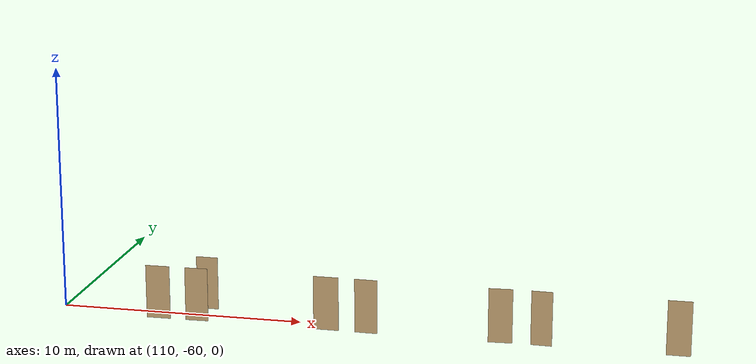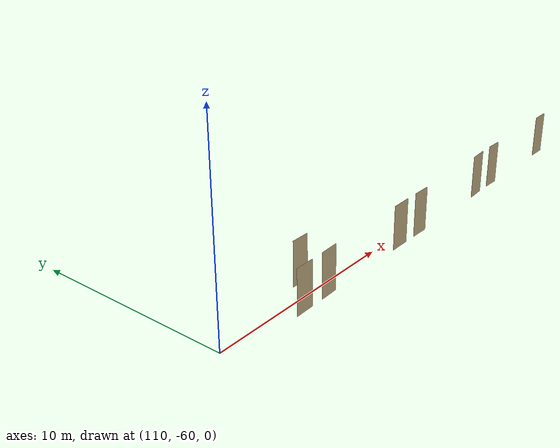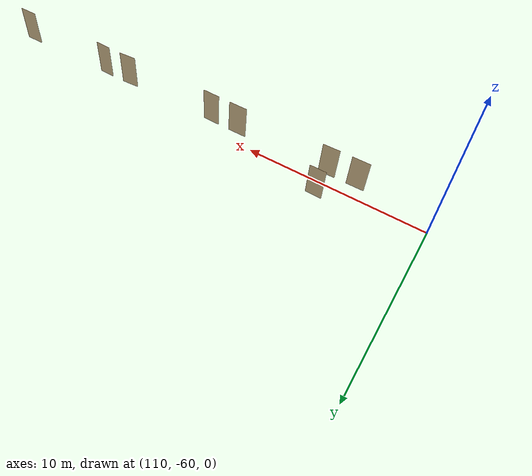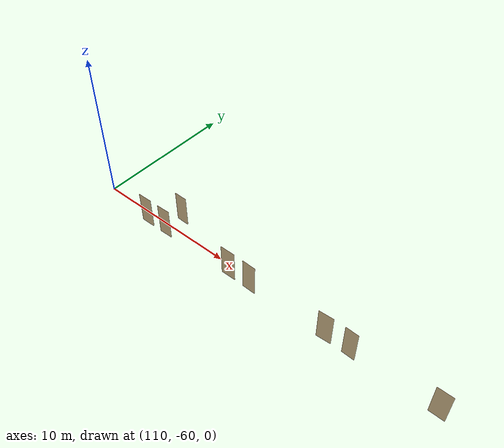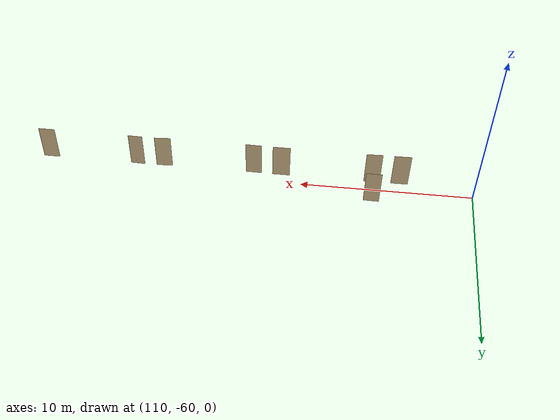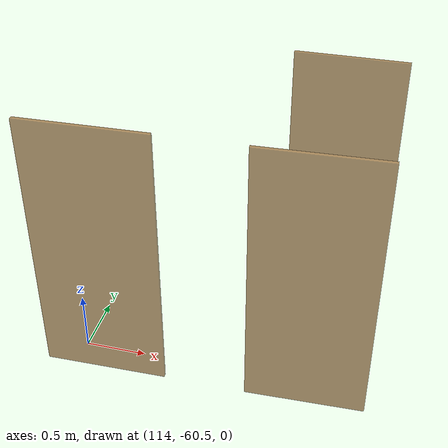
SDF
<sdf version="1.7">
 <world name="sim_world">
  <model name="puerta133">
   <pose>114.2448007606898 -60.705678667446406 0.0 0 0 0.01406751302804077</pose>
   <link name="right">
    <pose>0 0 1.11 0 0 0</pose>
    <visual name="right_visual">
     <geometry><box><size>0.9859795471853381 0.03 2.2</size></box></geometry>
     <material>
      <ambient>0.5 0.25 0 0.6</ambient>
      <diffuse>0.5 0.25 0 0.6</diffuse>
      <pbr><metal><metalness>0.0</metalness></metal></pbr>
     </material>
    </visual>
    <collision name="right_collision">
     <geometry><box><size>0.9859795471853381 0.03 2.2</size></box></geometry>
     <surface><contact><collide_bitmask>0x02</collide_bitmask></contact></surface>
    </collision>
    <inertial>
     <mass>50.0</mass>
     <inertia><ixx>20.17041666666667</ixx><iyy>24.217315281115855</iyy><izz>4.054398614449185</izz></inertia>
    </inertial>
   </link>
   <joint name="right_joint" type="revolute">
    <parent>world</parent>
    <child>right</child>
    <axis><xyz>0 0 1</xyz><limit><lower>0</lower><upper>1.57</upper></limit></axis>
    <pose>0.49798977359266905 0 0 0 0 0</pose>
   </joint>
   <plugin name="register_component" filename="libregister_component.so">
    <component name="Door">
     <v_max_door>0.5</v_max_door>
     <a_max_door>0.3</a_max_door>
     <a_nom_door>0.15</a_nom_door>
     <dx_min_door>0.01</dx_min_door>
     <f_max_door>500.0</f_max_door>
     <ros_interface>true</ros_interface>
     <door name="puerta133" type="SwingDoor" left_joint_name="empty_joint" right_joint_name="right_joint"/>
    </component>
   </plugin>
  </model>
  <model name="puerta134">
   <pose>115.85781663504133 -60.68464189095374 0.0 0 0 -3.111739419291278</pose>
   <link name="right">
    <pose>0 0 1.11 0 0 0</pose>
    <visual name="right_visual">
     <geometry><box><size>0.9301737971432017 0.03 2.2</size></box></geometry>
     <material>
      <ambient>0.5 0.25 0 0.6</ambient>
      <diffuse>0.5 0.25 0 0.6</diffuse>
      <pbr><metal><metalness>0.0</metalness></metal></pbr>
     </material>
    </visual>
    <collision name="right_collision">
     <geometry><box><size>0.9301737971432017 0.03 2.2</size></box></geometry>
     <surface><contact><collide_bitmask>0x02</collide_bitmask></contact></surface>
    </collision>
    <inertial>
     <mass>50.0</mass>
     <inertia><ixx>20.17041666666667</ixx><iyy>23.771763720382513</iyy><izz>3.6088470537158424</izz></inertia>
    </inertial>
   </link>
   <joint name="right_joint" type="revolute">
    <parent>world</parent>
    <child>right</child>
    <axis><xyz>0 0 -1</xyz><limit><lower>0</lower><upper>1.57</upper></limit></axis>
    <pose>0.47008689857160085 0 0 0 0 0</pose>
   </joint>
   <plugin name="register_component" filename="libregister_component.so">
    <component name="Door">
     <v_max_door>0.5</v_max_door>
     <a_max_door>0.3</a_max_door>
     <a_nom_door>0.15</a_nom_door>
     <dx_min_door>0.01</dx_min_door>
     <f_max_door>500.0</f_max_door>
     <ros_interface>true</ros_interface>
     <door name="puerta134" type="SwingDoor" left_joint_name="empty_joint" right_joint_name="right_joint"/>
    </component>
   </plugin>
  </model>
  <model name="puerta135">
   <pose>115.85781663504133 -59.16326221500425 0.0 0 0 3.1266993529322344</pose>
   <link name="right">
    <pose>0 0 1.11 0 0 0</pose>
    <visual name="right_visual">
     <geometry><box><size>0.9025082700834627 0.03 2.2</size></box></geometry>
     <material>
      <ambient>0.5 0.25 0 0.6</ambient>
      <diffuse>0.5 0.25 0 0.6</diffuse>
      <pbr><metal><metalness>0.0</metalness></metal></pbr>
     </material>
    </visual>
    <collision name="right_collision">
     <geometry><box><size>0.9025082700834627 0.03 2.2</size></box></geometry>
     <surface><contact><collide_bitmask>0x02</collide_bitmask></contact></surface>
    </collision>
    <inertial>
     <mass>50.0</mass>
     <inertia><ixx>20.17041666666667</ixx><iyy>23.560504906537687</iyy><izz>3.397588239871019</izz></inertia>
    </inertial>
   </link>
   <joint name="right_joint" type="revolute">
    <parent>world</parent>
    <child>right</child>
    <axis><xyz>0 0 1</xyz><limit><lower>0</lower><upper>1.57</upper></limit></axis>
    <pose>0.45625413504173135 0 0 0 0 0</pose>
   </joint>
   <plugin name="register_component" filename="libregister_component.so">
    <component name="Door">
     <v_max_door>0.5</v_max_door>
     <a_max_door>0.3</a_max_door>
     <a_nom_door>0.15</a_nom_door>
     <dx_min_door>0.01</dx_min_door>
     <f_max_door>500.0</f_max_door>
     <ros_interface>true</ros_interface>
     <door name="puerta135" type="SwingDoor" left_joint_name="empty_joint" right_joint_name="right_joint"/>
    </component>
   </plugin>
  </model>
  <model name="puerta137">
   <pose>121.21737721885395 -60.66989511063238 0.0 0 0 0.0013929279368439119</pose>
   <link name="right">
    <pose>0 0 1.11 0 0 0</pose>
    <visual name="right_visual">
     <geometry><box><size>1.0169743511113045 0.03 2.2</size></box></geometry>
     <material>
      <ambient>0.5 0.25 0 0.6</ambient>
      <diffuse>0.5 0.25 0 0.6</diffuse>
      <pbr><metal><metalness>0.0</metalness></metal></pbr>
     </material>
    </visual>
    <collision name="right_collision">
     <geometry><box><size>1.0169743511113045 0.03 2.2</size></box></geometry>
     <surface><contact><collide_bitmask>0x02</collide_bitmask></contact></surface>
    </collision>
    <inertial>
     <mass>50.0</mass>
     <inertia><ixx>20.17041666666667</ixx><iyy>24.475986795076082</iyy><izz>4.313070128409412</izz></inertia>
    </inertial>
   </link>
   <joint name="right_joint" type="revolute">
    <parent>world</parent>
    <child>right</child>
    <axis><xyz>0 0 1</xyz><limit><lower>0</lower><upper>1.57</upper></limit></axis>
    <pose>0.5134871755556523 0 0 0 0 0</pose>
   </joint>
   <plugin name="register_component" filename="libregister_component.so">
    <component name="Door">
     <v_max_door>0.5</v_max_door>
     <a_max_door>0.3</a_max_door>
     <a_nom_door>0.15</a_nom_door>
     <dx_min_door>0.01</dx_min_door>
     <f_max_door>500.0</f_max_door>
     <ros_interface>true</ros_interface>
     <door name="puerta137" type="SwingDoor" left_joint_name="empty_joint" right_joint_name="right_joint"/>
    </component>
   </plugin>
  </model>
  <model name="puerta138">
   <pose>122.84701214663471 -60.68918583467616 0.0 0 0 3.121224180362546</pose>
   <link name="right">
    <pose>0 0 1.11 0 0 0</pose>
    <visual name="right_visual">
     <geometry><box><size>0.9216596438690848 0.03 2.2</size></box></geometry>
     <material>
      <ambient>0.5 0.25 0 0.6</ambient>
      <diffuse>0.5 0.25 0 0.6</diffuse>
      <pbr><metal><metalness>0.0</metalness></metal></pbr>
     </material>
    </visual>
    <collision name="right_collision">
     <geometry><box><size>0.9216596438690848 0.03 2.2</size></box></geometry>
     <surface><contact><collide_bitmask>0x02</collide_bitmask></contact></surface>
    </collision>
    <inertial>
     <mass>50.0</mass>
     <inertia><ixx>20.17041666666667</ixx><iyy>23.706068746403705</iyy><izz>3.543152079737035</izz></inertia>
    </inertial>
   </link>
   <joint name="right_joint" type="revolute">
    <parent>world</parent>
    <child>right</child>
    <axis><xyz>0 0 -1</xyz><limit><lower>0</lower><upper>1.57</upper></limit></axis>
    <pose>0.4658298219345424 0 0 0 0 0</pose>
   </joint>
   <plugin name="register_component" filename="libregister_component.so">
    <component name="Door">
     <v_max_door>0.5</v_max_door>
     <a_max_door>0.3</a_max_door>
     <a_nom_door>0.15</a_nom_door>
     <dx_min_door>0.01</dx_min_door>
     <f_max_door>500.0</f_max_door>
     <ros_interface>true</ros_interface>
     <door name="puerta138" type="SwingDoor" left_joint_name="empty_joint" right_joint_name="right_joint"/>
    </component>
   </plugin>
  </model>
  <model name="puerta141">
   <pose>128.20789804736637 -60.67061036103314 0.0 0 0 0.058779096150123535</pose>
   <link name="right">
    <pose>0 0 1.11 0 0 0</pose>
    <visual name="right_visual">
     <geometry><box><size>0.9454153690034505 0.03 2.2</size></box></geometry>
     <material>
      <ambient>0.5 0.25 0 0.6</ambient>
      <diffuse>0.5 0.25 0 0.6</diffuse>
      <pbr><metal><metalness>0.0</metalness></metal></pbr>
     </material>
    </visual>
    <collision name="right_collision">
     <geometry><box><size>0.9454153690034505 0.03 2.2</size></box></geometry>
     <surface><contact><collide_bitmask>0x02</collide_bitmask></contact></surface>
    </collision>
    <inertial>
     <mass>50.0</mass>
     <inertia><ixx>20.17041666666667</ixx><iyy>23.890875916449716</iyy><izz>3.727959249783044</izz></inertia>
    </inertial>
   </link>
   <joint name="right_joint" type="revolute">
    <parent>world</parent>
    <child>right</child>
    <axis><xyz>0 0 1</xyz><limit><lower>0</lower><upper>1.57</upper></limit></axis>
    <pose>0.47770768450172524 0 0 0 0 0</pose>
   </joint>
   <plugin name="register_component" filename="libregister_component.so">
    <component name="Door">
     <v_max_door>0.5</v_max_door>
     <a_max_door>0.3</a_max_door>
     <a_nom_door>0.15</a_nom_door>
     <dx_min_door>0.01</dx_min_door>
     <f_max_door>500.0</f_max_door>
     <ros_interface>true</ros_interface>
     <door name="puerta141" type="SwingDoor" left_joint_name="empty_joint" right_joint_name="right_joint"/>
    </component>
   </plugin>
  </model>
  <model name="puerta142">
   <pose>129.8208928849414 -60.656578831112526 0.0 0 0 3.1082583405142232</pose>
   <link name="right">
    <pose>0 0 1.11 0 0 0</pose>
    <visual name="right_visual">
     <geometry><box><size>0.8320229815396551 0.03 2.2</size></box></geometry>
     <material>
      <ambient>0.5 0.25 0 0.6</ambient>
      <diffuse>0.5 0.25 0 0.6</diffuse>
      <pbr><metal><metalness>0.0</metalness></metal></pbr>
     </material>
    </visual>
    <collision name="right_collision">
     <geometry><box><size>0.8320229815396551 0.03 2.2</size></box></geometry>
     <surface><contact><collide_bitmask>0x02</collide_bitmask></contact></surface>
    </collision>
    <inertial>
     <mass>50.0</mass>
     <inertia><ixx>20.17041666666667</ixx><iyy>23.051092674208913</iyy><izz>2.888176007542239</izz></inertia>
    </inertial>
   </link>
   <joint name="right_joint" type="revolute">
    <parent>world</parent>
    <child>right</child>
    <axis><xyz>0 0 -1</xyz><limit><lower>0</lower><upper>1.57</upper></limit></axis>
    <pose>0.4210114907698276 0 0 0 0 0</pose>
   </joint>
   <plugin name="register_component" filename="libregister_component.so">
    <component name="Door">
     <v_max_door>0.5</v_max_door>
     <a_max_door>0.3</a_max_door>
     <a_nom_door>0.15</a_nom_door>
     <dx_min_door>0.01</dx_min_door>
     <f_max_door>500.0</f_max_door>
     <ros_interface>true</ros_interface>
     <door name="puerta142" type="SwingDoor" left_joint_name="empty_joint" right_joint_name="right_joint"/>
    </component>
   </plugin>
  </model>
  <model name="puerta145">
   <pose>135.10878117124352 -60.670610361033134 0.0 0 0 0.0</pose>
   <link name="right">
    <pose>0 0 1.11 0 0 0</pose>
    <visual name="right_visual">
     <geometry><box><size>0.9438074461773931 0.03 2.2</size></box></geometry>
     <material>
      <ambient>0.5 0.25 0 0.6</ambient>
      <diffuse>0.5 0.25 0 0.6</diffuse>
      <pbr><metal><metalness>0.0</metalness></metal></pbr>
     </material>
    </visual>
    <collision name="right_collision">
     <geometry><box><size>0.9438074461773931 0.03 2.2</size></box></geometry>
     <surface><contact><collide_bitmask>0x02</collide_bitmask></contact></surface>
    </collision>
    <inertial>
     <mass>50.0</mass>
     <inertia><ixx>20.17041666666667</ixx><iyy>23.878218731082892</iyy><izz>3.7153020644162202</izz></inertia>
    </inertial>
   </link>
   <joint name="right_joint" type="revolute">
    <parent>world</parent>
    <child>right</child>
    <axis><xyz>0 0 1</xyz><limit><lower>0</lower><upper>1.57</upper></limit></axis>
    <pose>0.47690372308869655 0 0 0 0 0</pose>
   </joint>
   <plugin name="register_component" filename="libregister_component.so">
    <component name="Door">
     <v_max_door>0.5</v_max_door>
     <a_max_door>0.3</a_max_door>
     <a_nom_door>0.15</a_nom_door>
     <dx_min_door>0.01</dx_min_door>
     <f_max_door>500.0</f_max_door>
     <ros_interface>true</ros_interface>
     <door name="puerta145" type="SwingDoor" left_joint_name="empty_joint" right_joint_name="right_joint"/>
    </component>
   </plugin>
  </model>
 </world>
</sdf>
